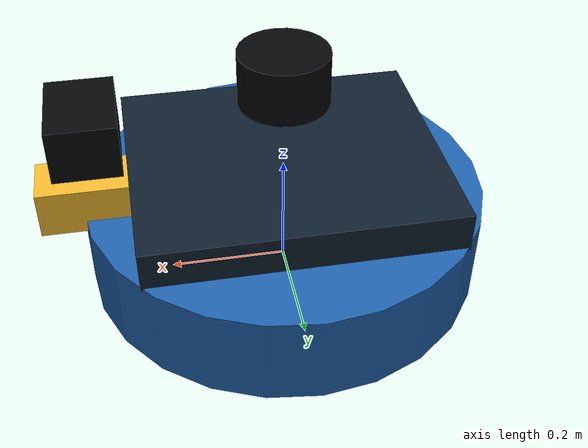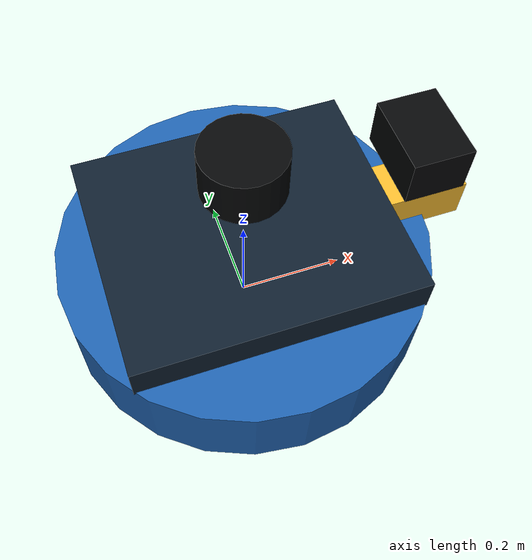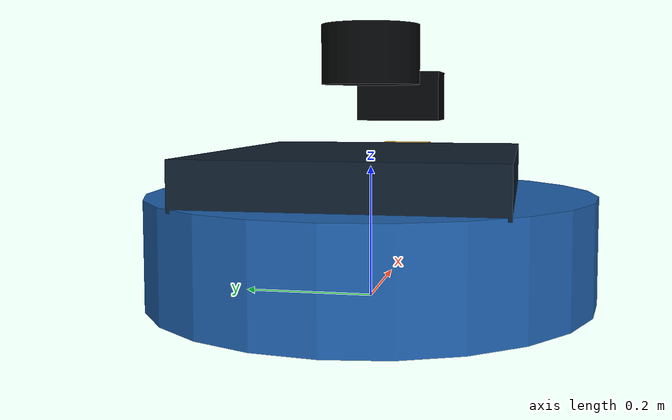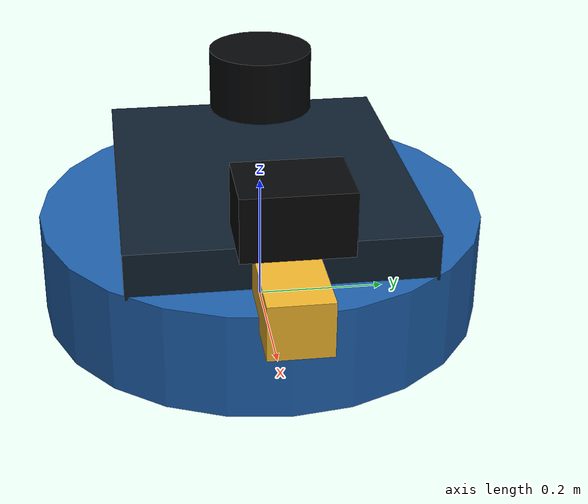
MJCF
<?xml version="1.0" encoding="utf-8"?>
<mujoco model="lingtu_omni_cart">
  <compiler angle="radian" autolimits="true"/>
  <option timestep="0.001" iterations="40" solver="PGS" gravity="0 0 -9.81"/>
  <asset>
    <material name="cart_body" rgba="0.12 0.38 0.68 1"/>
    <material name="cart_top" rgba="0.06 0.12 0.18 1"/>
    <material name="cart_front" rgba="0.95 0.72 0.18 1"/>
    <material name="sensor_black" rgba="0.02 0.025 0.03 1"/>
  </asset>
  <worldbody>
    <body name="base_link" pos="0 0 0">
      <joint name="floating_base_joint" type="free"/>
      <geom name="cart_base" type="cylinder" size="0.34 0.08" pos="0 0 0.08"
            material="cart_body" contype="1" conaffinity="1" condim="3"
            friction="1 0.5 0.5"/>
      <geom name="cart_top_plate" type="box" size="0.26 0.22 0.035"
            pos="0 0 0.19" material="cart_top" contype="1" conaffinity="1"/>
      <geom name="cart_front_marker" type="box" size="0.13 0.045 0.04"
            pos="0.28 0 0.18" material="cart_front" contype="0" conaffinity="0"/>
      <geom name="front_camera_body" type="box" size="0.055 0.075 0.045"
            pos="0.32 0 0.31" material="sensor_black" contype="0" conaffinity="0"/>
      <camera name="front_camera" pos="0.38 0 0.34" xyaxes="0 -1 0 0 0 1" fovy="78"/>
      <body name="lidar_link" pos="0 0 0.37">
        <geom name="lidar_mid360_visual" type="cylinder" size="0.075 0.045"
              rgba="0.02 0.025 0.03 1" contype="0" conaffinity="0"/>
        <site name="lidar_site" pos="0 0 0" size="0.001"/>
      </body>
    </body>
  </worldbody>
</mujoco>
